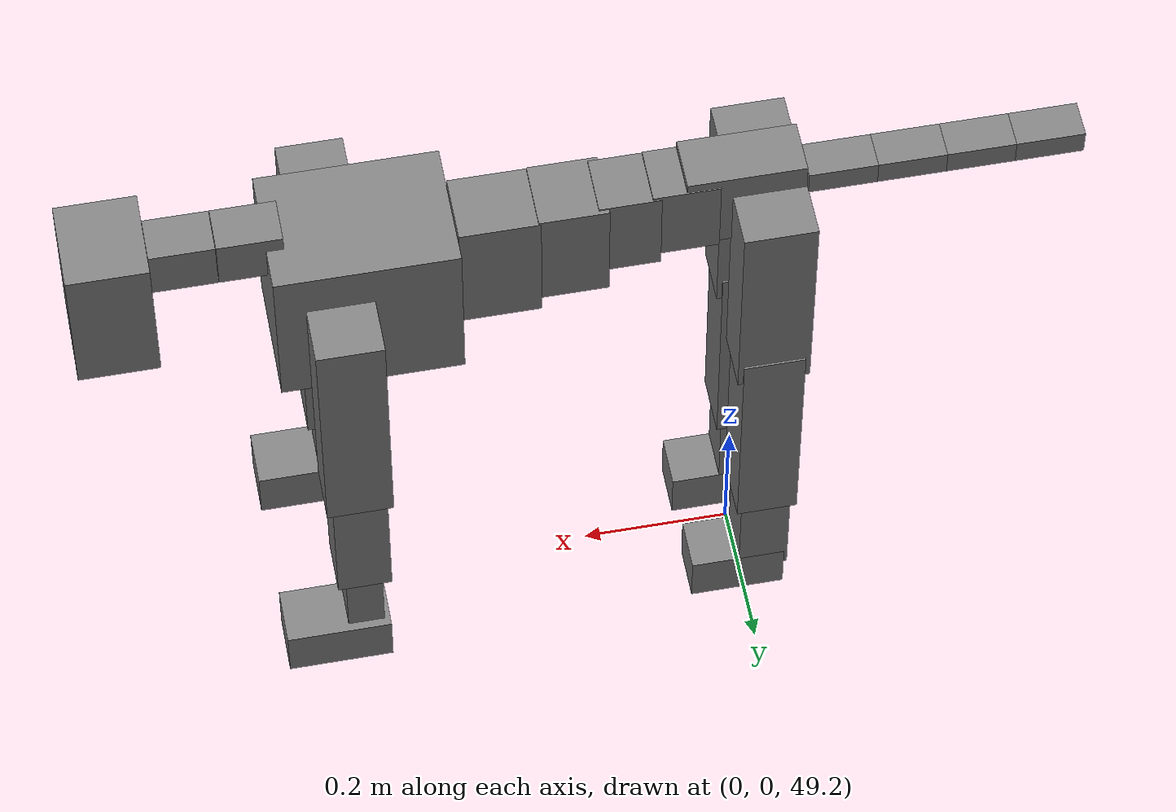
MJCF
<mujoco model="dog">

    <default>
        <joint armature="0.02" stiffness="1" damping="0.2" limited="true" />
        <geom condim="3" friction="1 0.05 0.05" margin="0.01" />
        <motor ctrllimited="true" ctrlrange="-1.0 1.0" forcelimited="true" gear="50" />
    </default>

    <compiler inertiafromgeom="true" angle="radian" />

    <option timestep="0.016" iterations="50" tolerance="1e-10" solver="Newton" jacobian="dense" cone="pyramidal" />

    <size nconmax="20000" njmax="60000" nstack="5000000" />
    <visual>
        <map force="0.1" zfar="30" />
        <rgba haze="0.15 0.25 0.35 1" />
        <quality shadowsize="2048" />
        <global offwidth="800" offheight="800" />
    </visual>

    <asset>
        <texture type="skybox" builtin="gradient" rgb1="0.3 0.5 0.7" rgb2="0 0 0" width="512" height="512" />
        <texture name="texplane" type="2d" builtin="checker" rgb1=".2 .3 .4" rgb2=".1 0.15 0.2" width="512" height="512" mark="cross" markrgb=".8 .8 .8" />
        <texture name="texgeom" type="cube" builtin="flat" mark="cross" width="127" height="1278" rgb1="0.8 0.6 0.4" rgb2="0.8 0.6 0.4" markrgb="1 1 1" random="0.01" />

        <material name="matplane" reflectance="0.3" texture="texplane" texrepeat="1 1" texuniform="true" />
        <material name="matgeom" texture="texgeom" texuniform="true" rgba="0.8 0.6 .4 1" />
    </asset>

    <worldbody>
        <geom name="floor" pos="0 0 0" size="0 0 .25" type="plane" material="matplane" condim="3" />

        <light directional="false" diffuse=".2 .2 .2" specular="0 0 0" pos="0 0 5" dir="0 0 -1" castshadow="false" />
        <light mode="targetbodycom" target="torso" directional="false" diffuse=".8 .8 .8" specular="0.3 0.3 0.3" pos="0 0 4.0" dir="0 0 -1" />

        <body name="root" pos="0 0 50">
            <freejoint name="root_1" />
            <geom type="box" pos="0 0 -0.02" size="0.0774  0.0358  0.063" density="2030" />

            <body name="spine1" pos="0.054 0 0">
                <joint name="spine1_y" axis="0 1 0" range="0 0.7" limited="true" />
                <geom type="box" pos="0.02375 0 -0.03" size="0.04375  0.0375  0.05985" density="2030" />

                <body name="spine2" pos="0.0612 0 0">
                    <joint name="spine2_y" axis="0 1 0" range="-0.15 0.15" limited="true" />
                    <geom type="box" pos="0.03555  0  -0.04" size="0.04055  0.039  0.06615" density="2030" />

                    <body name="spine3" pos="0.0730 0 0">
                        <joint name="spine3_y" axis="0 1 0" range="-0.15 0.15" limited="true" />
                        <geom type="box" pos="0.03555  0  -0.057" size="0.04555  0.0445  0.081" density="2030" />

                        <body name="spine4" pos="0.0780 0 0">
                            <joint name="spine4_y" axis="0 1 0" range="-0.15 0.15" limited="true" />
                            <geom type="box" pos="0.05265  0  -0.07" size="0.05265  0.045  0.09135" density="2030" />

                            <body name="torso" pos="0.1082 0 0">
                                <joint name="torso_y" axis="0 1 0" range="-0.15 0.15" limited="true" />
                                <geom type="box" pos="0.11925  0  -0.085" size="0.11925  0.085  0.11745" density="2030" />

                                <body name="neck1" pos="0.2160  0   0.0180">
                                    <joint name="neck1_y" axis="0 1 0" range="-1.2  -1" limited="true" />
                                    <geom type="box" pos="0.0423  0  0" size="0.0423  0.03  0.036" density="2325" />

                                    <body name="neck2" pos="0.0853  0  0">
                                        <joint name="neck2_y" axis="0 1 0" range="0.1  0" limited="true" />
                                        <geom type="box" pos="0.0423  0  0" size="0.0423  0.03  0.036" density="2325" />

                                        <body name="head" pos="0.0853  0  0">
                                            <joint name="head_y" axis="0 1 0" range="-0.3  -0.2" limited="true" />
                                            <geom type="box" pos="0.0531  0  -0.055" size="0.0531  0.06  0.1044" density="4030" />

                                        </body>
                                    </body>
                                </body>

                                <body name="front_shoulder" pos="0.156  0   -0.0480">
                                    <joint name="front_shoulder_y" axis="0 1 0" range="-1 1.5" limited="true" />
                                    <geom type="box" pos="0 0.13 -0.1553" size="0.0440  0.0376  0.1819" density="1158" />
                                    <geom type="box" pos="0 -0.13 -0.1553" size="0.0440  0.0376  0.1819" density="1158" />

                                    <body name="front_elbow" pos="0  0  -0.3106">
                                        <joint name="front_elbow_y" axis="0 1 0" range="-2 0" limited="true" />
                                        <geom type="box" pos="0 0.13 -0.1041" size="0.0363  0.0372  0.1041" density="1081" />
                                        <geom type="box" pos="0 -0.13 -0.1041" size="0.0363  0.0372  0.1041" density="1081" />

                                        <body name="front_wrist" pos="0  0  -0.2081">
                                            <joint name="front_wrist_y" axis="0 1 0" range="-0.2 0" limited="true" />
                                            <geom type="box" pos="0 0.13 -0.0602" size="0.0246  0.0273  0.0734" density="1664" />
                                            <geom type="box" pos="0 -0.13 -0.0602" size="0.0246  0.0273  0.0734" density="1664" />

                                            <body name="front_finger_end" pos="0  0  -0.1205">
                                                <joint name="front_finger_y" axis="0 1 0" range="-0.4 1" limited="true" />
                                                <geom type="box" pos="0.0386  0.13  -0.0220" size="0.0709  0.0386  0.0370" density="1515" />
                                                <geom type="box" pos="0.0386  -0.13  -0.0220" size="0.0709  0.0386  0.0370" density="1515" />

                                            </body>

                                        </body>
                                    </body>
                                </body>

                            </body>
                        </body>
                    </body>
                </body>
            </body>

            <body name="back_hip" pos="-0.03 0 -0.018">
                <joint name="back_hip_y" axis="0 1 0" range="-1.5 0.3" limited="true" />
                <geom type="box" pos="0 0.07 -0.1366" size="0.0481  0.0377  0.1594" density="1154" />
                <geom type="box" pos="0 -0.07 -0.1366" size="0.0481  0.0377  0.1594" density="1154" />

                <body name="back_knee" pos="0  0  -0.2732">
                    <joint name="back_knee_y" axis="0 1 0" range="0 2.8" limited="true" />
                    <geom type="box" pos="0 0.07 -0.1596" size="0.0411  0.0405  0.1751" density="1227" />
                    <geom type="box" pos="0 -0.07 -0.1596" size="0.0411  0.0405  0.1751" density="1227" />

                    <body name="back_ankle" pos="0  0  -0.3191">
                        <joint name="back_ankle_y" axis="0 1 0" range="-2.2 0" limited="true" />
                        <geom type="box" pos="0 0.07 -0.0775" size="0.0339  0.0339  0.0888" density="1284" />
                        <geom type="box" pos="0 -0.07 -0.0775" size="0.0339  0.0339  0.0888" density="1284" />

                        <body name="back_toe_end" pos="0  0  -0.1551">
                            <joint name="back_toe_y" axis="0 1 0" range="-0.4 1" limited="true" />
                            <geom type="box" pos="0.0351  0.07  -0.0218" size="0.0644  0.0351  0.0368" density="1515" />
                            <geom type="box" pos="0.0351  -0.07  -0.0218" size="0.0644  0.0351  0.0368" density="1515" />

                        </body>
                    </body>
                </body>
            </body>

            <body name="tail1" pos="-0.074 0 -0.006">
                <joint name="tail1_y" axis="0 1 0" range="-0.2 0.2" limited="true" />
                <geom type="box" pos="-0.0536  0  0" size="0.045  0.025  0.0175" density="1587" />

                <body name="tail2" pos="-0.09 0 0">
                    <joint name="tail2_y" axis="0 1 0" range="-0.2 0.2" limited="true" />
                    <geom type="box" pos="-0.0536  0  0" size="0.045  0.025  0.0175" density="1587" />

                    <body name="tail3" pos="-0.09 0 0">
                        <joint name="tail3_y" axis="0 1 0" range="-0.2 0.2" limited="true" />
                        <geom type="box" pos="-0.0536  0  0" size="0.045  0.025  0.0175" density="1587" />

                        <body name="tail4" pos="-0.09 0 0">
                            <joint name="tail4_y" axis="0 1 0" range="-0.2 0.2" limited="true" />
                            <geom type="box" pos="-0.0536  0  0" size="0.045  0.025  0.0175" density="1587" />

                        </body>
                    </body>
                </body>
            </body>
        </body>
    </worldbody>

    <actuator>
        <motor joint="spine1_y" forcerange="-150 150     " />
        <motor joint="spine2_y" forcerange="-150 150     " />
        <motor joint="spine3_y" forcerange="-150 150     " />
        <motor joint="spine4_y" forcerange="-150 150     " />
        <motor joint="torso_y" forcerange="-150 150     " />
        <motor joint="neck1_y" forcerange="-100 100       " />
        <motor joint="neck2_y" forcerange="-100 100       " />
        <motor joint="head_y" forcerange="-150 150       " />
        <motor joint="front_shoulder_y" forcerange="-158.18 192.59" />
        <motor joint="front_elbow_y" forcerange="-172.07 198.12" />
        <motor joint="front_wrist_y" forcerange="-113.14 105.53" />
        <motor joint="front_finger_y" forcerange="-80.88 85.23" />
        <motor joint="back_hip_y" forcerange="-303.52 399.80" />
        <motor joint="back_knee_y" forcerange="-390.62 398.79" />
        <motor joint="back_angle_y" forcerange="-231.64 210.33" />
        <motor joint="back_toe_y" forcerange="-113.15 87.68" />
        <motor joint="tail1_y" forcerange="-50 50     " />
        <motor joint="tail2_y" forcerange="-50 50     " />
        <motor joint="tail3_y" forcerange="-50 50     " />
        <motor joint="tail4_y" forcerange="-50 50     " />
    </actuator>
</mujoco>
